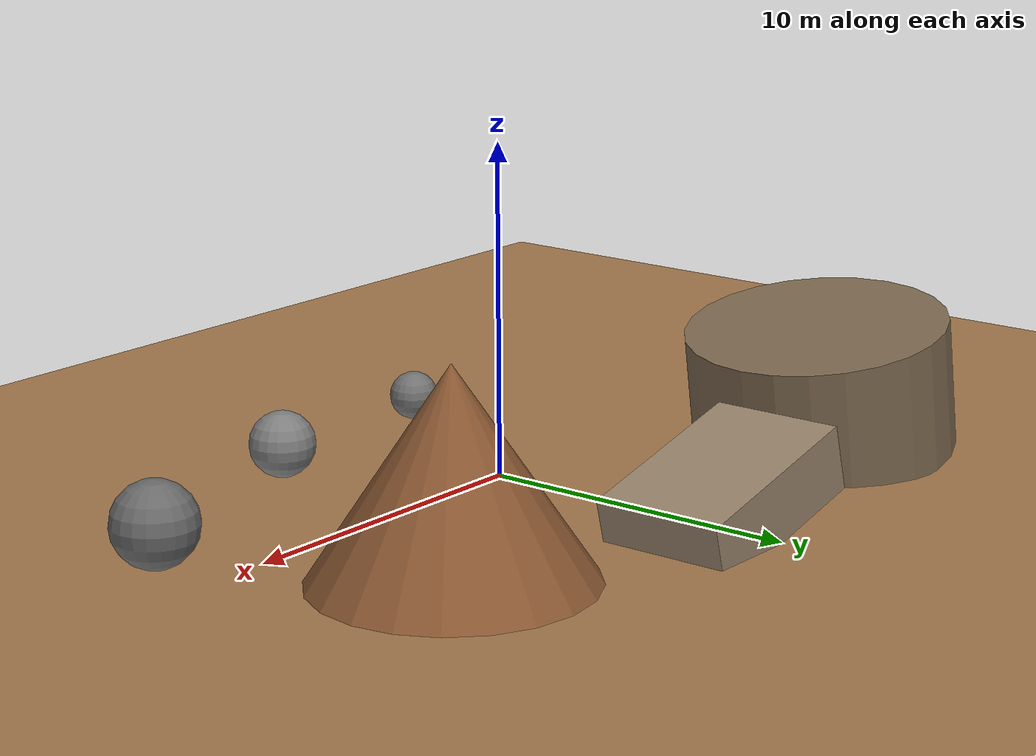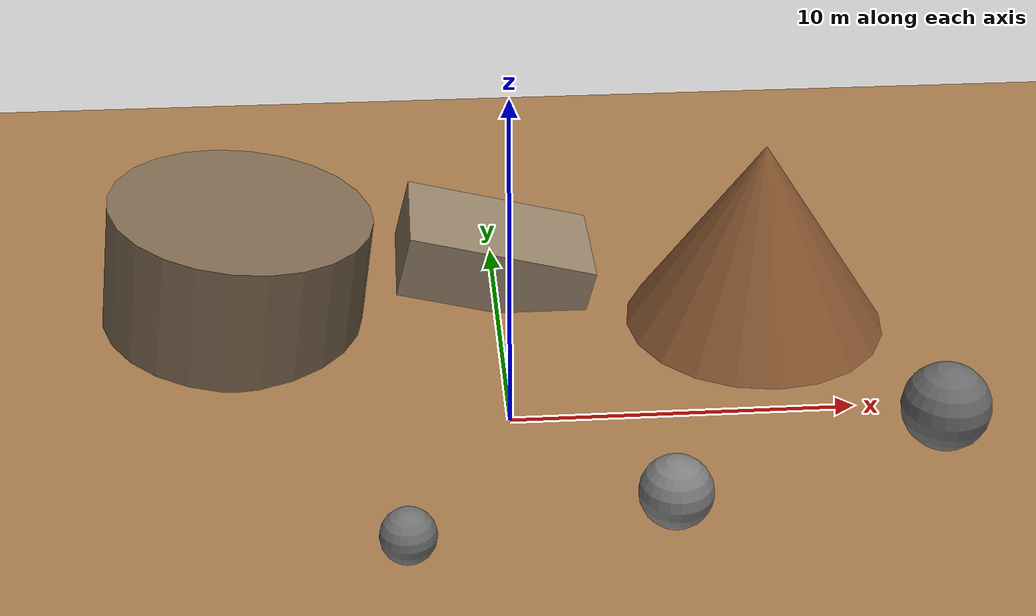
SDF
<?xml version="1.0" ?>

<sdf version="1.9">
    <world name="planet">

        <plugin
            filename="gz-sim-user-commands-system"
            name="gz::sim::systems::UserCommands"/>

        <plugin
            filename="gz-sim-sensors-system"
            name="gz::sim::systems::Sensors">
            <render_engine>ogre2</render_engine>
        </plugin>

        <plugin
            filename="gz-sim-physics-system"
            name="gz::sim::systems::Physics"/>

        <plugin
            filename="gz-sim-scene-broadcaster-system"
            name="gz::sim::systems::SceneBroadcaster"/>

        <!-- WORLD                      -->

        <gravity>0 0 -3.71</gravity>

        <scene>
            <ambient>0.7 0.7 0.7 1</ambient>
            <background>0.45 0.50 0.55 1</background>
        </scene>

        <!-- SUN                        -->

        <light name="sun" type="directional">
            <cast_shadows>true</cast_shadows>
            <pose>0 0 20 0 0 0</pose>

            <diffuse>1 1 1 1</diffuse>
            <specular>0.2 0.2 0.2 1</specular>

            <direction>-0.5 0.5 -1</direction>
        </light>

        <!-- PLANET SURFACE             -->

        <model name="ground">
            <static>true</static>

            <link name="ground_link">

                <collision name="ground_collision">
                    <geometry>
                        <plane>
                            <normal>0 0 1</normal>
                            <size>100 100</size>
                        </plane>
                    </geometry>
                </collision>

                <visual name="ground_visual">
                    <geometry>
                        <plane>
                            <normal>0 0 1</normal>
                            <size>100 100</size>
                        </plane>
                    </geometry>

                    <material>
                        <ambient>0.45 0.32 0.20 1</ambient>
                        <diffuse>0.65 0.48 0.30 1</diffuse>
                        <specular>0.05 0.05 0.05 1</specular>
                    </material>
                </visual>

            </link>
        </model>

        <!-- MOUNTAIN                   -->

        <model name="mountain">
            <static>true</static>
            <pose>8 5 3 0 0 0</pose>

            <link name="mountain_link">

                <collision name="mountain_collision">
                    <geometry>
                        <cone>
                            <radius>4</radius>
                            <length>6</length>
                        </cone>
                    </geometry>
                </collision>

                <visual name="mountain_visual">
                    <geometry>
                        <cone>
                            <radius>4</radius>
                            <length>6</length>
                        </cone>
                    </geometry>

                    <material>
                        <ambient>0.35 0.22 0.12 1</ambient>
                        <diffuse>0.55 0.35 0.20 1</diffuse>
                        <specular>0.05 0.05 0.05 1</specular>
                    </material>
                </visual>

            </link>
        </model>

        <!-- HILL                       -->

        <model name="hill">
            <static>true</static>
            <pose>-8 6 2 0 0.15 0</pose>

            <link name="hill_link">

                <collision name="hill_collision">
                    <geometry>
                        <cylinder>
                            <radius>4</radius>
                            <length>4</length>
                        </cylinder>
                    </geometry>
                </collision>

                <visual name="hill_visual">
                    <geometry>
                        <cylinder>
                            <radius>4</radius>
                            <length>4</length>
                        </cylinder>
                    </geometry>

                    <material>
                        <ambient>0.30 0.25 0.20 1</ambient>
                        <diffuse>0.50 0.42 0.32 1</diffuse>
                        <specular>0.05 0.05 0.05 1</specular>
                    </material>
                </visual>

            </link>
        </model>

        <!-- RAMP                       -->

        <model name="ramp">
            <static>true</static>
            <pose>0 8 1 0 0.25 0</pose>

            <link name="ramp_link">

                <collision name="ramp_collision">
                    <geometry>
                        <box>
                            <size>6 4 2</size>
                        </box>
                    </geometry>
                </collision>

                <visual name="ramp_visual">
                    <geometry>
                        <box>
                            <size>6 4 2</size>
                        </box>
                    </geometry>

                    <material>
                        <ambient>0.40 0.35 0.30 1</ambient>
                        <diffuse>0.60 0.52 0.42 1</diffuse>
                        <specular>0.05 0.05 0.05 1</specular>
                    </material>
                </visual>

            </link>
        </model>

        <!-- ROCK 1                     -->

        <model name="rock_1">
            <static>true</static>
            <pose>4 -5 1 0 0 0</pose>

            <link name="rock_1_link">

                <collision name="rock_1_collision">
                    <geometry>
                        <sphere>
                            <radius>1</radius>
                        </sphere>
                    </geometry>
                </collision>

                <visual name="rock_1_visual">
                    <geometry>
                        <sphere>
                            <radius>1</radius>
                        </sphere>
                    </geometry>

                    <material>
                        <ambient>0.30 0.30 0.30 1</ambient>
                        <diffuse>0.50 0.50 0.50 1</diffuse>
                        <specular>0.05 0.05 0.05 1</specular>
                    </material>
                </visual>

            </link>
        </model>

        <!-- ROCK 2                     -->

        <model name="rock_2">
            <static>true</static>
            <pose>-3 -6 0.75 0 0 0</pose>

            <link name="rock_2_link">

                <collision name="rock_2_collision">
                    <geometry>
                        <sphere>
                            <radius>0.75</radius>
                        </sphere>
                    </geometry>
                </collision>

                <visual name="rock_2_visual">
                    <geometry>
                        <sphere>
                            <radius>0.75</radius>
                        </sphere>
                    </geometry>

                    <material>
                        <ambient>0.28 0.28 0.28 1</ambient>
                        <diffuse>0.45 0.45 0.45 1</diffuse>
                        <specular>0.05 0.05 0.05 1</specular>
                    </material>
                </visual>

            </link>
        </model>

        <!-- ROCK 3                     -->

        <model name="rock_3">
            <static>true</static>
            <pose>12 -2 1.25 0 0 0</pose>

            <link name="rock_3_link">

                <collision name="rock_3_collision">
                    <geometry>
                        <sphere>
                            <radius>1.25</radius>
                        </sphere>
                    </geometry>
                </collision>

                <visual name="rock_3_visual">
                    <geometry>
                        <sphere>
                            <radius>1.25</radius>
                        </sphere>
                    </geometry>

                    <material>
                        <ambient>0.25 0.25 0.25 1</ambient>
                        <diffuse>0.42 0.42 0.42 1</diffuse>
                        <specular>0.05 0.05 0.05 1</specular>
                    </material>
                </visual>

            </link>
        </model>

    </world>
</sdf>
